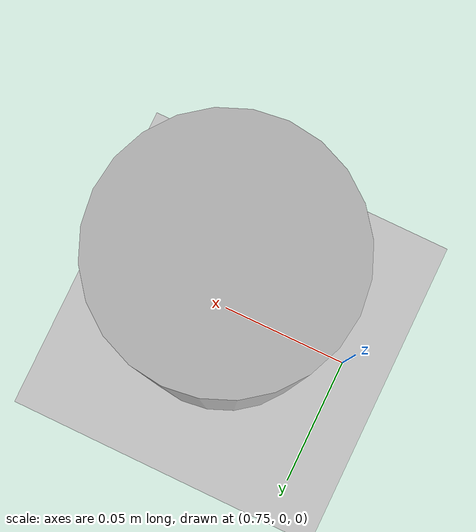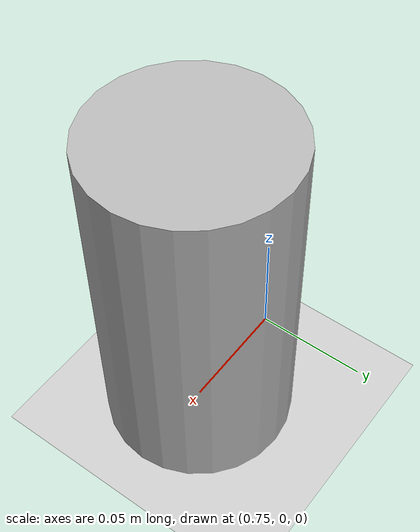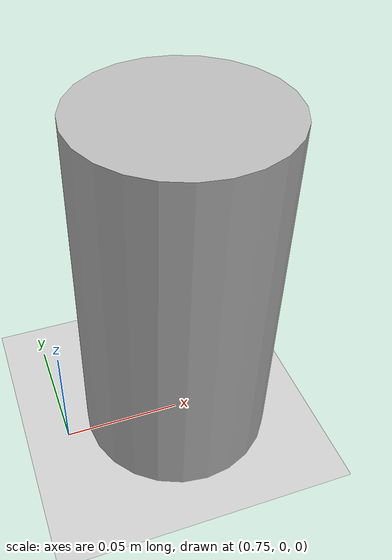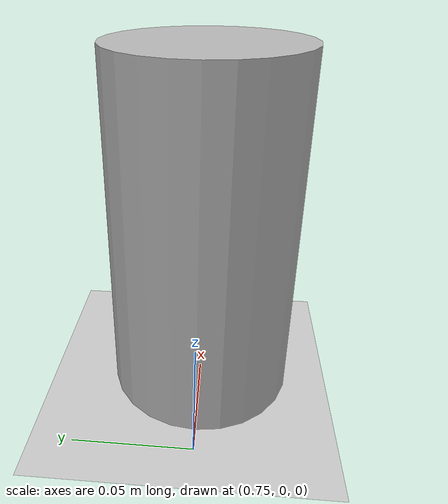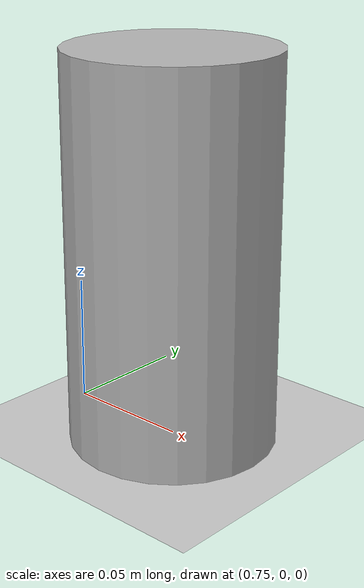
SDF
<?xml version="1.0" ?>
<sdf version="1.4">
  <world name="default">
    <physics type="ode">
      <gravity>0 0 -9.81</gravity>
      <ode>
        <solver>
          <type>quick</type>
          <iters>20</iters>
          <sor>1.0</sor>
        </solver>
        <constraints>
          <cfm>0.0</cfm>
          <erp>0.2</erp>
          <contact_max_correcting_vel>100.0</contact_max_correcting_vel>
          <contact_surface_layer>0.0</contact_surface_layer>
        </constraints>
      </ode>
      <real_time_update_rate>1000</real_time_update_rate>
      <max_step_size>0.001</max_step_size>
    </physics>
    <!-- A global light source -->
    <include>
      <uri>model://sun</uri>
    </include>
    <!-- A ground plane -->
    <include>
      <uri>model://ground_plane</uri>
    </include>
    <!-- Can on the ground -->
    <include>
      <uri>model://soda_can</uri>
      <name>can1</name>
      <pose>0.8 0 0 0 0 0</pose>
    </include>
  </world>
</sdf>

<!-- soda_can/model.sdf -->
<sdf version="1.4">
  <model name="soda_can">
    <static>False</static>
    <link name="link">
      <inertial>
        <!-- https://en.wikipedia.org/wiki/List_of_moments_of_inertia -->
        <mass>0.394</mass> <!-- standard filled coke can -->
        <inertia>
          <ixx>0.00089635</ixx>
          <ixy>0</ixy>
          <ixz>0</ixz>
          <iyy>0.00089635</iyy>
          <iyz>0</iyz>
          <izz>0.0003152</izz>
        </inertia>
      </inertial>
      <collision name="collision">
        <pose>0 0 0.075 3.1416 0 0</pose>
        <geometry>
          <cylinder>
            <radius>0.04</radius>
            <length>0.15</length>
          </cylinder>
        </geometry>
        <surface>
          <bounce />
          <friction>
            <ode />
          </friction>
          <contact>
            <ode />
          </contact>
        </surface>
      </collision>
      <visual name="visual">
        <pose>0 0 0.075 3.1416 0 0</pose>
        <geometry>
          <cylinder>
            <radius>0.04</radius>
            <length>0.15</length>
          </cylinder>
        </geometry>
      </visual>
    </link>
  </model>
</sdf>
